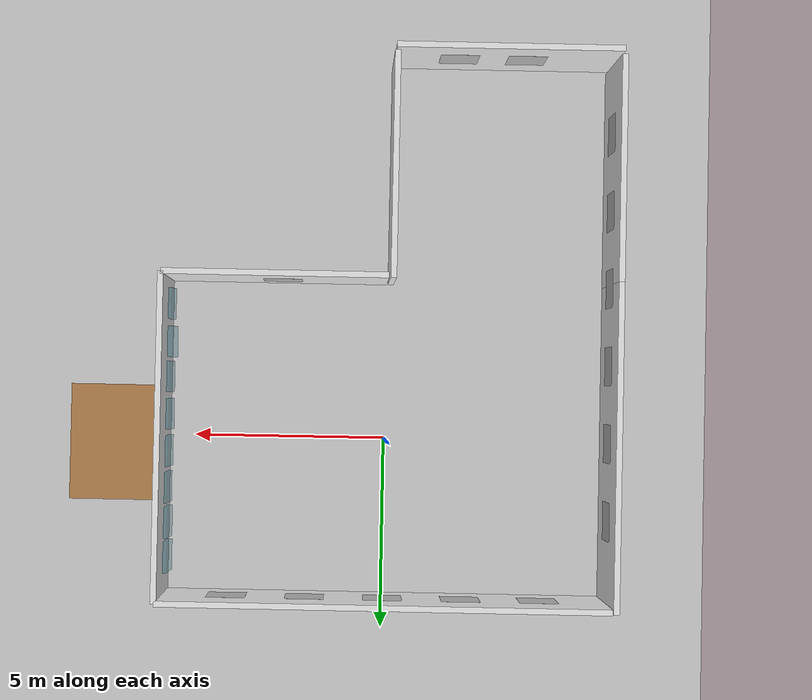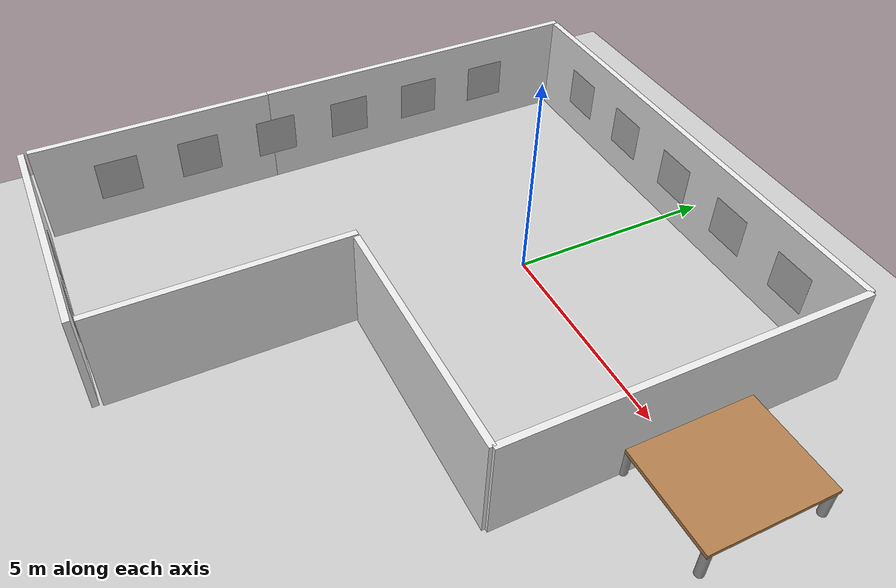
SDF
<sdf version="1.6">
 <world name="default">
  <light name="sun" type="directional">
   <pose>0 0 10 0 -0 0</pose>
   <diffuse>0.8 0.8 0.8 1</diffuse>
   <specular>0.2 0.2 0.2 1</specular>
   <attenuation>
    <range>1000</range>
    <constant>0.9</constant>
    <linear>0.01</linear>
    <quadratic>0.001</quadratic>
   </attenuation>
   <direction>-0.5 0.5 -1</direction>
  </light>
  <gravity>0 0 -9.8</gravity>
  <magnetic_field>6e-06 2.3e-05 -4.2e-05</magnetic_field>
  <atmosphere type="adiabatic"/>
  <physics name="default_physics" default="0" type="ode">
   <max_step_size>0.01</max_step_size>
   <real_time_factor>1</real_time_factor>
   <real_time_update_rate>100</real_time_update_rate>
   <ode>
    <solver>
     <type>quick</type>
     <iters>100</iters>
     <precon_iters>0</precon_iters>
     <sor>1</sor>
     <use_dynamic_moi_rescaling>0</use_dynamic_moi_rescaling>
    </solver>
    <constraints>
     <cfm>0</cfm>
     <erp>0.5</erp>
     <contact_max_correcting_vel>1000</contact_max_correcting_vel>
     <contact_surface_layer>0</contact_surface_layer>
    </constraints>
   </ode>
  </physics>
  <scene><ambient>0.4 0.4 0.4 1</ambient><background>0.7 0.7 0.7 1</background><shadows>0</shadows></scene>
  <spherical_coordinates>
   <surface_model>EARTH_WGS84</surface_model>
   <latitude_deg>0</latitude_deg>
   <longitude_deg>0</longitude_deg>
   <elevation>0</elevation>
   <heading_deg>0</heading_deg>
  </spherical_coordinates>
  <model name="office_env_w2">
   <pose>0 4.162 1.25 0 -0 0</pose>
   <link name="Wall_10">
    <visual name="Wall_10_Visual_0">
     <geometry><box><size>11.466 0.15 2.5</size></box></geometry>
     <material>
      <script>
       <uri>model://office_env_w/materials/scripts</uri>
       <uri>model://office_env_w/materials/textures</uri>
       <name>wall_white</name>
      </script>
     </material>
     <meta><layer>0</layer></meta>
    </visual>
    <collision name="Wall_10_Collision_0"><geometry><box><size>11.466 0.15 2.5</size></box></geometry></collision>
   </link>
   <static>1</static>
  </model>
  <model name="office_env_w">
   <pose>5.733 0 1.25 0 -0 1.57</pose>
   <link name="Wall_10">
    <visual name="Wall_10_Visual_0">
     <geometry><box><size>8.324 0.15 2.5</size></box></geometry>
     <material>
      <script>
       <uri>model://office_env_w/materials/scripts</uri>
       <uri>model://office_env_w/materials/textures</uri>
       <name>wall_white</name>
      </script>
     </material>
     <meta><layer>0</layer></meta>
    </visual>
    <collision name="Wall_10_Collision_0"><geometry><box><size>8.324 0.15 2.5</size></box></geometry></collision>
   </link>
   <static>1</static>
  </model>
  <model name="office_env_w3">
   <pose>2.8655 -4.162 1.25 0 -0 0</pose>
   <link name="Wall_10">
    <visual name="Wall_10_Visual_0">
     <geometry><box><size>5.733 0.15 2.5</size></box></geometry>
     <material>
      <script>
       <uri>model://office_env_w/materials/scripts</uri>
       <uri>model://office_env_w/materials/textures</uri>
       <name>wall_white</name>
      </script>
     </material>
     <meta><layer>0</layer></meta>
    </visual>
    <collision name="Wall_10_Collision_0"><geometry><box><size>5.733 0.15 2.5</size></box></geometry></collision>
   </link>
   <static>1</static>
  </model>
  <model name="office_env_w3_clone">
   <pose>-0.116895 -6.96099 1.25 0 -0 1.57</pose>
   <link name="Wall_10">
    <visual name="Wall_10_Visual_0">
     <geometry><box><size>5.733 0.15 2.5</size></box></geometry>
     <material>
      <script>
       <uri>model://office_env_w/materials/scripts</uri>
       <uri>model://office_env_w/materials/textures</uri>
       <name>wall_white</name>
      </script>
     </material>
     <meta><layer>0</layer></meta>
    </visual>
    <collision name="Wall_10_Collision_0"><geometry><box><size>5.733 0.15 2.5</size></box></geometry></collision>
   </link>
   <static>1</static>
  </model>
  <model name="office_env_w_clone">
   <pose>-5.82312 0.056431 1.25 0 -0 1.57</pose>
   <link name="Wall_10">
    <visual name="Wall_10_Visual_0">
     <geometry><box><size>8.324 0.15 2.5</size></box></geometry>
     <material>
      <script>
       <uri>model://office_env_w/materials/scripts</uri>
       <uri>model://office_env_w/materials/textures</uri>
       <name>wall_white</name>
      </script>
     </material>
     <meta><layer>0</layer></meta>
    </visual>
    <collision name="Wall_10_Collision_0"><geometry><box><size>8.324 0.15 2.5</size></box></geometry></collision>
   </link>
   <static>1</static>
  </model>
  <model name="office_env_w3_clone_clone">
   <pose>-5.82704 -6.96526 1.25 0 -0 1.57</pose>
   <link name="Wall_10">
    <visual name="Wall_10_Visual_0">
     <geometry><box><size>5.733 0.15 2.5</size></box></geometry>
     <material>
      <script>
       <uri>model://office_env_w/materials/scripts</uri>
       <uri>model://office_env_w/materials/textures</uri>
       <name>wall_white</name>
      </script>
     </material>
     <meta><layer>0</layer></meta>
    </visual>
    <collision name="Wall_10_Collision_0"><geometry><box><size>5.733 0.15 2.5</size></box></geometry></collision>
   </link>
   <static>1</static>
  </model>
  <model name="office_env_w3_clone_0">
   <pose>-2.96341 -9.9742 1.25 0 -0 0</pose>
   <link name="Wall_10">
    <visual name="Wall_10_Visual_0">
     <geometry><box><size>5.733 0.15 2.5</size></box></geometry>
     <material>
      <script>
       <uri>model://office_env_w/materials/scripts</uri>
       <uri>model://office_env_w/materials/textures</uri>
       <name>wall_white</name>
      </script>
     </material>
     <meta><layer>0</layer></meta>
    </visual>
    <collision name="Wall_10_Collision_0"><geometry><box><size>5.733 0.15 2.5</size></box></geometry></collision>
   </link>
   <static>1</static>
  </model>
  <model name="window_3">
   <link name="link_2">
    <visual name="visual">
     <pose>0 0 0.9 0 -0 0</pose>
     <geometry><box><size>0.8 0.15 0.8</size></box></geometry>
     <material>
      <lighting>1</lighting>
      <ambient>0.1 0.5 0.6 1</ambient>
      <diffuse>0.1 0.5 0.6 1</diffuse>
      <specular>0.01 0.01 0.01 1</specular>
      <emissive>0 0 0 1</emissive>
     </material>
     <transparency>0.7</transparency>
    </visual>
    <collision name="collision">
     <pose>0 0 0.9 0 -0 0</pose>
     <geometry><box><size>0.8 0.15 0.8</size></box></geometry>
    </collision>
   </link>
   <static>1</static>
   <pose>5.55041 3.13004 -0.000428 0.072676 0.011663 1.57159</pose>
  </model>
  <model name="window_3_clone_clone">
   <link name="link_2">
    <visual name="visual">
     <pose>0 0 0.9 0 -0 0</pose>
     <geometry><box><size>0.8 0.15 0.8</size></box></geometry>
     <material>
      <lighting>1</lighting>
      <ambient>0.1 0.5 0.6 1</ambient>
      <diffuse>0.1 0.5 0.6 1</diffuse>
      <specular>0.01 0.01 0.01 1</specular>
      <emissive>0 0 0 1</emissive>
     </material>
     <transparency>0.7</transparency>
    </visual>
    <collision name="collision">
     <pose>0 0 0.9 0 -0 0</pose>
     <geometry><box><size>0.8 0.15 0.8</size></box></geometry>
    </collision>
   </link>
   <static>1</static>
   <pose>5.57835 0.394375 -0.000428 0.072676 0.011663 1.57159</pose>
  </model>
  <model name="window_3_clone_clone_0">
   <link name="link_2">
    <visual name="visual">
     <pose>0 0 0.9 0 -0 0</pose>
     <geometry><box><size>0.8 0.15 0.8</size></box></geometry>
     <material>
      <lighting>1</lighting>
      <ambient>0.1 0.5 0.6 1</ambient>
      <diffuse>0.1 0.5 0.6 1</diffuse>
      <specular>0.01 0.01 0.01 1</specular>
      <emissive>0 0 0 1</emissive>
     </material>
     <transparency>0.7</transparency>
    </visual>
    <collision name="collision">
     <pose>0 0 0.9 0 -0 0</pose>
     <geometry><box><size>0.8 0.15 0.8</size></box></geometry>
    </collision>
   </link>
   <static>1</static>
   <pose>5.57507 -1.53947 -0.000428 0.072676 0.011663 1.57159</pose>
  </model>
  <model name="window_3_clone_clone_1">
   <link name="link_2">
    <visual name="visual">
     <pose>0 0 0.9 0 -0 0</pose>
     <geometry><box><size>0.8 0.15 0.8</size></box></geometry>
     <material>
      <lighting>1</lighting>
      <ambient>0.1 0.5 0.6 1</ambient>
      <diffuse>0.1 0.5 0.6 1</diffuse>
      <specular>0.01 0.01 0.01 1</specular>
      <emissive>0 0 0 1</emissive>
     </material>
     <transparency>0.7</transparency>
    </visual>
    <collision name="collision">
     <pose>0 0 0.9 0 -0 0</pose>
     <geometry><box><size>0.8 0.15 0.8</size></box></geometry>
    </collision>
   </link>
   <static>1</static>
   <pose>5.57316 -3.44378 -0.000428 0.072676 0.011663 1.57159</pose>
  </model>
  <model name="window_3_clone_clone_2">
   <link name="link_2">
    <visual name="visual">
     <pose>0 0 0.9 0 -0 0</pose>
     <geometry><box><size>0.8 0.15 0.8</size></box></geometry>
     <material>
      <lighting>1</lighting>
      <ambient>0.1 0.5 0.6 1</ambient>
      <diffuse>0.1 0.5 0.6 1</diffuse>
      <specular>0.01 0.01 0.01 1</specular>
      <emissive>0 0 0 1</emissive>
     </material>
     <transparency>0.7</transparency>
    </visual>
    <collision name="collision">
     <pose>0 0 0.9 0 -0 0</pose>
     <geometry><box><size>0.8 0.15 0.8</size></box></geometry>
    </collision>
   </link>
   <static>1</static>
   <pose>5.51026 -2.44936 -0.000428 0.072676 0.011663 1.57159</pose>
  </model>
  <model name="window_3_clone_clone_3">
   <link name="link_2">
    <visual name="visual">
     <pose>0 0 0.9 0 -0 0</pose>
     <geometry><box><size>0.8 0.15 0.8</size></box></geometry>
     <material>
      <lighting>1</lighting>
      <ambient>0.1 0.5 0.6 1</ambient>
      <diffuse>0.1 0.5 0.6 1</diffuse>
      <specular>0.01 0.01 0.01 1</specular>
      <emissive>0 0 0 1</emissive>
     </material>
     <transparency>0.7</transparency>
    </visual>
    <collision name="collision">
     <pose>0 0 0.9 0 -0 0</pose>
     <geometry><box><size>0.8 0.15 0.8</size></box></geometry>
    </collision>
   </link>
   <static>1</static>
   <pose>5.56777 -0.565762 -0.000428 0.072676 0.011663 1.57159</pose>
  </model>
  <model name="window_3_clone_clone_4">
   <link name="link_2">
    <visual name="visual">
     <pose>0 0 0.9 0 -0 0</pose>
     <geometry><box><size>0.8 0.15 0.8</size></box></geometry>
     <material>
      <lighting>1</lighting>
      <ambient>0.1 0.5 0.6 1</ambient>
      <diffuse>0.1 0.5 0.6 1</diffuse>
      <specular>0.01 0.01 0.01 1</specular>
      <emissive>0 0 0 1</emissive>
     </material>
     <transparency>0.7</transparency>
    </visual>
    <collision name="collision">
     <pose>0 0 0.9 0 -0 0</pose>
     <geometry><box><size>0.8 0.15 0.8</size></box></geometry>
    </collision>
   </link>
   <static>1</static>
   <pose>5.59135 1.3384 -0.000428 0.072676 0.011663 1.57159</pose>
  </model>
  <model name="window_3_clone_clone_5">
   <link name="link_2">
    <visual name="visual">
     <pose>0 0 0.9 0 -0 0</pose>
     <geometry><box><size>0.8 0.15 0.8</size></box></geometry>
     <material>
      <lighting>1</lighting>
      <ambient>0.1 0.5 0.6 1</ambient>
      <diffuse>0.1 0.5 0.6 1</diffuse>
      <specular>0.01 0.01 0.01 1</specular>
      <emissive>0 0 0 1</emissive>
     </material>
     <transparency>0.7</transparency>
    </visual>
    <collision name="collision">
     <pose>0 0 0.9 0 -0 0</pose>
     <geometry><box><size>0.8 0.15 0.8</size></box></geometry>
    </collision>
   </link>
   <static>1</static>
   <pose>5.56149 2.2418 -0.000428 0.072676 0.011663 1.57159</pose>
  </model>
  <model name="neobotix_wall_stickers">
   <static>1</static>
   <link name="link">
    <collision name="collision">
     <geometry><plane><normal>0 0 1</normal><size>1 1</size></plane></geometry>
     <surface><friction><ode><mu>100</mu><mu2>50</mu2></ode></friction></surface>
    </collision>
    <visual name="visual">
     <cast_shadows>0</cast_shadows>
     <geometry><plane><normal>0 0 1</normal><size>1 1</size></plane></geometry>
     <material>
      <script>
       <uri>model://neobotix_wall_stickers/materials/scripts</uri>
       <uri>model://neobotix_wall_stickers/materials/textures/</uri>
       <name>NeobotixGroundPlane/Image</name>
      </script>
     </material>
    </visual>
   </link>
   <pose>0 4.07 1.25 1.57 -0 0</pose>
  </model>
  <model name="neobotix_wall_stickers_0">
   <static>1</static>
   <link name="link">
    <collision name="collision">
     <geometry><plane><normal>0 0 1</normal><size>1 1</size></plane></geometry>
     <surface><friction><ode><mu>100</mu><mu2>50</mu2></ode></friction></surface>
    </collision>
    <visual name="visual">
     <cast_shadows>0</cast_shadows>
     <geometry><plane><normal>0 0 1</normal><size>1 1</size></plane></geometry>
     <material>
      <script>
       <uri>model://neobotix_wall_stickers/materials/scripts</uri>
       <uri>model://neobotix_wall_stickers/materials/textures/</uri>
       <name>NeobotixGroundPlane/Image</name>
      </script>
     </material>
    </visual>
   </link>
   <pose>-2 4.07 1.25 1.57 -0 0</pose>
  </model>
  <model name="neobotix_wall_stickers_1">
   <static>1</static>
   <link name="link">
    <collision name="collision">
     <geometry><plane><normal>0 0 1</normal><size>1 1</size></plane></geometry>
     <surface><friction><ode><mu>100</mu><mu2>50</mu2></ode></friction></surface>
    </collision>
    <visual name="visual">
     <cast_shadows>0</cast_shadows>
     <geometry><plane><normal>0 0 1</normal><size>1 1</size></plane></geometry>
     <material>
      <script>
       <uri>model://neobotix_wall_stickers/materials/scripts</uri>
       <uri>model://neobotix_wall_stickers/materials/textures/</uri>
       <name>NeobotixGroundPlane/Image</name>
      </script>
     </material>
    </visual>
   </link>
   <pose>-4 4.07 1.25 1.57 -0 0</pose>
  </model>
  <model name="neobotix_wall_stickers_2">
   <static>1</static>
   <link name="link">
    <collision name="collision">
     <geometry><plane><normal>0 0 1</normal><size>1 1</size></plane></geometry>
     <surface><friction><ode><mu>100</mu><mu2>50</mu2></ode></friction></surface>
    </collision>
    <visual name="visual">
     <cast_shadows>0</cast_shadows>
     <geometry><plane><normal>0 0 1</normal><size>1 1</size></plane></geometry>
     <material>
      <script>
       <uri>model://neobotix_wall_stickers/materials/scripts</uri>
       <uri>model://neobotix_wall_stickers/materials/textures/</uri>
       <name>NeobotixGroundPlane/Image</name>
      </script>
     </material>
    </visual>
   </link>
   <pose>2 4.07 1.25 1.57 -0 0</pose>
  </model>
  <model name="neobotix_wall_stickers_3">
   <static>1</static>
   <link name="link">
    <collision name="collision">
     <geometry><plane><normal>0 0 1</normal><size>1 1</size></plane></geometry>
     <surface><friction><ode><mu>100</mu><mu2>50</mu2></ode></friction></surface>
    </collision>
    <visual name="visual">
     <cast_shadows>0</cast_shadows>
     <geometry><plane><normal>0 0 1</normal><size>1 1</size></plane></geometry>
     <material>
      <script>
       <uri>model://neobotix_wall_stickers/materials/scripts</uri>
       <uri>model://neobotix_wall_stickers/materials/textures/</uri>
       <name>NeobotixGroundPlane/Image</name>
      </script>
     </material>
    </visual>
   </link>
   <pose>4 4.07 1.25 1.57 -0 0</pose>
  </model>
  <model name="neobotix_wall_stickers_4">
   <static>1</static>
   <link name="link">
    <collision name="collision">
     <geometry><plane><normal>0 0 1</normal><size>1 1</size></plane></geometry>
     <surface><friction><ode><mu>100</mu><mu2>50</mu2></ode></friction></surface>
    </collision>
    <visual name="visual">
     <cast_shadows>0</cast_shadows>
     <geometry><plane><normal>0 0 1</normal><size>1 1</size></plane></geometry>
     <material>
      <script>
       <uri>model://neobotix_wall_stickers/materials/scripts</uri>
       <uri>model://neobotix_wall_stickers/materials/textures/</uri>
       <name>NeobotixGroundPlane/Image</name>
      </script>
     </material>
    </visual>
   </link>
   <pose>2.7 -4.07 1.25 1.57159 0.001593 3.14159</pose>
  </model>
  <model name="neobotix_wall_stickers_5">
   <static>1</static>
   <link name="link">
    <collision name="collision">
     <geometry><plane><normal>0 0 1</normal><size>1 1</size></plane></geometry>
     <surface><friction><ode><mu>100</mu><mu2>50</mu2></ode></friction></surface>
    </collision>
    <visual name="visual">
     <cast_shadows>0</cast_shadows>
     <geometry><plane><normal>0 0 1</normal><size>1 1</size></plane></geometry>
     <material>
      <script>
       <uri>model://neobotix_wall_stickers/materials/scripts</uri>
       <uri>model://neobotix_wall_stickers/materials/textures/</uri>
       <name>NeobotixGroundPlane/Image</name>
      </script>
     </material>
    </visual>
   </link>
   <pose>-5.732 0 1.25 1.57 -0 1.57</pose>
  </model>
  <model name="neobotix_wall_stickers_6">
   <static>1</static>
   <link name="link">
    <collision name="collision">
     <geometry><plane><normal>0 0 1</normal><size>1 1</size></plane></geometry>
     <surface><friction><ode><mu>100</mu><mu2>50</mu2></ode></friction></surface>
    </collision>
    <visual name="visual">
     <cast_shadows>0</cast_shadows>
     <geometry><plane><normal>0 0 1</normal><size>1 1</size></plane></geometry>
     <material>
      <script>
       <uri>model://neobotix_wall_stickers/materials/scripts</uri>
       <uri>model://neobotix_wall_stickers/materials/textures/</uri>
       <name>NeobotixGroundPlane/Image</name>
      </script>
     </material>
    </visual>
   </link>
   <pose>-5.732 -2 1.25 1.57 -0 1.57</pose>
  </model>
  <model name="neobotix_wall_stickers_7">
   <static>1</static>
   <link name="link">
    <collision name="collision">
     <geometry><plane><normal>0 0 1</normal><size>1 1</size></plane></geometry>
     <surface><friction><ode><mu>100</mu><mu2>50</mu2></ode></friction></surface>
    </collision>
    <visual name="visual">
     <cast_shadows>0</cast_shadows>
     <geometry><plane><normal>0 0 1</normal><size>1 1</size></plane></geometry>
     <material>
      <script>
       <uri>model://neobotix_wall_stickers/materials/scripts</uri>
       <uri>model://neobotix_wall_stickers/materials/textures/</uri>
       <name>NeobotixGroundPlane/Image</name>
      </script>
     </material>
    </visual>
   </link>
   <pose>-5.732 2 1.25 1.57 -0 1.57</pose>
  </model>
  <model name="neobotix_wall_stickers_8">
   <static>1</static>
   <link name="link">
    <collision name="collision">
     <geometry><plane><normal>0 0 1</normal><size>1 1</size></plane></geometry>
     <surface><friction><ode><mu>100</mu><mu2>50</mu2></ode></friction></surface>
    </collision>
    <visual name="visual">
     <cast_shadows>0</cast_shadows>
     <geometry><plane><normal>0 0 1</normal><size>1 1</size></plane></geometry>
     <material>
      <script>
       <uri>model://neobotix_wall_stickers/materials/scripts</uri>
       <uri>model://neobotix_wall_stickers/materials/textures/</uri>
       <name>NeobotixGroundPlane/Image</name>
      </script>
     </material>
    </visual>
   </link>
   <pose>-5.732 -4 1.25 1.57 -0 1.57</pose>
  </model>
  <model name="neobotix_wall_stickers_9">
   <static>1</static>
   <link name="link">
    <collision name="collision">
     <geometry><plane><normal>0 0 1</normal><size>1 1</size></plane></geometry>
     <surface><friction><ode><mu>100</mu><mu2>50</mu2></ode></friction></surface>
    </collision>
    <visual name="visual">
     <cast_shadows>0</cast_shadows>
     <geometry><plane><normal>0 0 1</normal><size>1 1</size></plane></geometry>
     <material>
      <script>
       <uri>model://neobotix_wall_stickers/materials/scripts</uri>
       <uri>model://neobotix_wall_stickers/materials/textures/</uri>
       <name>NeobotixGroundPlane/Image</name>
      </script>
     </material>
    </visual>
   </link>
   <pose>-5.732 -6 1.25 1.57 -0 1.57</pose>
  </model>
  <model name="neobotix_wall_stickers_10">
   <static>1</static>
   <link name="link">
    <collision name="collision">
     <geometry><plane><normal>0 0 1</normal><size>1 1</size></plane></geometry>
     <surface><friction><ode><mu>100</mu><mu2>50</mu2></ode></friction></surface>
    </collision>
    <visual name="visual">
     <cast_shadows>0</cast_shadows>
     <geometry><plane><normal>0 0 1</normal><size>1 1</size></plane></geometry>
     <material>
      <script>
       <uri>model://neobotix_wall_stickers/materials/scripts</uri>
       <uri>model://neobotix_wall_stickers/materials/textures/</uri>
       <name>NeobotixGroundPlane/Image</name>
      </script>
     </material>
    </visual>
   </link>
   <pose>-5.732 -8 1.25 1.57 -0 1.57</pose>
  </model>
  <model name="neobotix_wall_stickers_11">
   <static>1</static>
   <link name="link">
    <collision name="collision">
     <geometry><plane><normal>0 0 1</normal><size>1 1</size></plane></geometry>
     <surface><friction><ode><mu>100</mu><mu2>50</mu2></ode></friction></surface>
    </collision>
    <visual name="visual">
     <cast_shadows>0</cast_shadows>
     <geometry><plane><normal>0 0 1</normal><size>1 1</size></plane></geometry>
     <material>
      <script>
       <uri>model://neobotix_wall_stickers/materials/scripts</uri>
       <uri>model://neobotix_wall_stickers/materials/textures/</uri>
       <name>NeobotixGroundPlane/Image</name>
      </script>
     </material>
    </visual>
   </link>
   <pose>-0.2 -8 1.25 1.57159 0.001593 -1.57159</pose>
  </model>
  <model name="neobotix_wall_stickers_12">
   <static>1</static>
   <link name="link">
    <collision name="collision">
     <geometry><plane><normal>0 0 1</normal><size>1 1</size></plane></geometry>
     <surface><friction><ode><mu>100</mu><mu2>50</mu2></ode></friction></surface>
    </collision>
    <visual name="visual">
     <cast_shadows>0</cast_shadows>
     <geometry><plane><normal>0 0 1</normal><size>1 1</size></plane></geometry>
     <material>
      <script>
       <uri>model://neobotix_wall_stickers/materials/scripts</uri>
       <uri>model://neobotix_wall_stickers/materials/textures/</uri>
       <name>NeobotixGroundPlane/Image</name>
      </script>
     </material>
    </visual>
   </link>
   <pose>-0.2 -6 1.25 1.57159 0.001593 -1.57159</pose>
  </model>
  <model name="neobotix_wall_stickers_13">
   <static>1</static>
   <link name="link">
    <collision name="collision">
     <geometry><plane><normal>0 0 1</normal><size>1 1</size></plane></geometry>
     <surface><friction><ode><mu>100</mu><mu2>50</mu2></ode></friction></surface>
    </collision>
    <visual name="visual">
     <cast_shadows>0</cast_shadows>
     <geometry><plane><normal>0 0 1</normal><size>1 1</size></plane></geometry>
     <material>
      <script>
       <uri>model://neobotix_wall_stickers/materials/scripts</uri>
       <uri>model://neobotix_wall_stickers/materials/textures/</uri>
       <name>NeobotixGroundPlane/Image</name>
      </script>
     </material>
    </visual>
   </link>
   <pose>-1.7445 -9.89 1.25 1.57159 0.001593 3.14159</pose>
  </model>
  <model name="neobotix_wall_stickers_14">
   <static>1</static>
   <link name="link">
    <collision name="collision">
     <geometry><plane><normal>0 0 1</normal><size>1 1</size></plane></geometry>
     <surface><friction><ode><mu>100</mu><mu2>50</mu2></ode></friction></surface>
    </collision>
    <visual name="visual">
     <cast_shadows>0</cast_shadows>
     <geometry><plane><normal>0 0 1</normal><size>1 1</size></plane></geometry>
     <material>
      <script>
       <uri>model://neobotix_wall_stickers/materials/scripts</uri>
       <uri>model://neobotix_wall_stickers/materials/textures/</uri>
       <name>NeobotixGroundPlane/Image</name>
      </script>
     </material>
    </visual>
   </link>
   <pose>-3.489 -9.89 1.25 1.57 -0 -3.14</pose>
  </model>
  <light name="user_point_light_0" type="point">
   <pose>3.54976 1.43038 1 0 -0 0</pose>
   <diffuse>0.5 0.5 0.5 1</diffuse>
   <specular>0.1 0.1 0.1 1</specular>
   <attenuation>
    <range>20</range>
    <constant>0.5</constant>
    <linear>0.01</linear>
    <quadratic>0.001</quadratic>
   </attenuation>
   <cast_shadows>0</cast_shadows>
   <direction>0 0 -1</direction>
  </light>
  <light name="user_point_light_0_clone" type="point">
   <pose>-8.02842 6.22549 7.18798 0 -0 0</pose>
   <diffuse>0.5 0.5 0.5 1</diffuse>
   <specular>0.1 0.1 0.1 1</specular>
   <direction>0 0 -1</direction>
   <attenuation>
    <range>20</range>
    <constant>0.5</constant>
    <linear>0.01</linear>
    <quadratic>0.001</quadratic>
   </attenuation>
   <cast_shadows>0</cast_shadows>
  </light>
  <audio><device>default</device></audio>
  <model name="neobotix_ground_plane">
   <static>1</static>
   <link name="link">
    <collision name="collision">
     <geometry><plane><normal>0 0 1</normal><size>100 100</size></plane></geometry>
     <surface><friction><ode><mu>100</mu><mu2>50</mu2></ode></friction></surface>
    </collision>
    <visual name="visual">
     <cast_shadows>0</cast_shadows>
     <geometry><plane><normal>0 0 1</normal><size>100 100</size></plane></geometry>
     <material>
      <script>
       <uri>model://neobotix_ground_plane/materials/scripts</uri>
       <uri>model://neobotix_ground_plane/materials/textures/</uri>
       <name>NeobotixGroundPlane/Image</name>
      </script>
     </material>
    </visual>
   </link>
   <pose>15.6163 -0.783534 0 0 -0 0</pose>
  </model>
  <model name="table">
   <link name="link">
    <pose>0 0 0 0 -0 1.57</pose>
    <inertial>
     <inertia><ixx>1</ixx><ixy>0</ixy><ixz>0</ixz><iyy>1</iyy><iyz>0</iyz><izz>1</izz></inertia>
     <mass>1</mass>
    </inertial>
    <visual name="visual1">
     <pose>0 0 0.75 0 -0 0</pose>
     <geometry><box><size>3 2.5 0.1</size></box></geometry>
     <material>
      <script><uri>file://media/materials/scripts/gazebo.material</uri><name>Gazebo/Wood</name></script>
      <ambient>1 1 1 1</ambient>
      <diffuse>1 1 1 1</diffuse>
      <specular>0.2 0.2 0.2 1</specular>
      <emissive>0 0 0 1</emissive>
      <shader type="vertex"><normal_map>__default__</normal_map></shader>
     </material>
    </visual>
    <visual name="front_left_leg">
     <pose>1.4 1.15 0.35 0 -0 0</pose>
     <geometry><cylinder><radius>0.1</radius><length>0.7</length></cylinder></geometry>
     <material>
      <script><uri>file://media/materials/scripts/gazebo.material</uri><name>Gazebo/Grey</name></script>
      <ambient>0.3 0.3 0.3 1</ambient>
      <diffuse>0.7 0.7 0.7 1</diffuse>
      <specular>0.01 0.01 0.01 1</specular>
      <emissive>0 0 0 1</emissive>
      <shader type="vertex"><normal_map>__default__</normal_map></shader>
     </material>
    </visual>
    <visual name="back_right_leg">
     <pose>-1.4 -1.15 0.35 0 -0 0</pose>
     <geometry><cylinder><radius>0.1</radius><length>0.7</length></cylinder></geometry>
     <material>
      <script><uri>file://media/materials/scripts/gazebo.material</uri><name>Gazebo/Grey</name></script>
      <ambient>0.3 0.3 0.3 1</ambient>
      <diffuse>0.7 0.7 0.7 1</diffuse>
      <specular>0.01 0.01 0.01 1</specular>
      <emissive>0 0 0 1</emissive>
      <shader type="vertex"><normal_map>__default__</normal_map></shader>
     </material>
    </visual>
    <visual name="front_right_leg">
     <pose>1.4 -1.15 0.35 0 -0 0</pose>
     <geometry><cylinder><radius>0.1</radius><length>0.7</length></cylinder></geometry>
     <material>
      <script><uri>file://media/materials/scripts/gazebo.material</uri><name>Gazebo/Grey</name></script>
      <ambient>0.3 0.3 0.3 1</ambient>
      <diffuse>0.7 0.7 0.7 1</diffuse>
      <specular>0.01 0.01 0.01 1</specular>
      <emissive>0 0 0 1</emissive>
      <shader type="vertex"><normal_map>__default__</normal_map></shader>
     </material>
    </visual>
    <visual name="back_left_leg">
     <pose>-1.4 1.15 0.35 0 -0 0</pose>
     <geometry><cylinder><radius>0.1</radius><length>0.7</length></cylinder></geometry>
     <material>
      <script><uri>file://media/materials/scripts/gazebo.material</uri><name>Gazebo/Grey</name></script>
      <ambient>0.3 0.3 0.3 1</ambient>
      <diffuse>0.7 0.7 0.7 1</diffuse>
      <specular>0.01 0.01 0.01 1</specular>
      <emissive>0 0 0 1</emissive>
      <shader type="vertex"><normal_map>__default__</normal_map></shader>
     </material>
    </visual>
    <collision name="surface">
     <pose>0 0 0.75 0 -0 0</pose>
     <geometry><box><size>3 2.5 0.1</size></box></geometry>
     <surface>
      <friction>
       <ode><mu>0.6</mu><mu2>0.6</mu2><fdir1>0 0 0</fdir1><slip1>0</slip1><slip2>0</slip2></ode>
       <torsional>
        <coefficient>1</coefficient>
        <patch_radius>0</patch_radius>
        <surface_radius>0</surface_radius>
        <use_patch_radius>1</use_patch_radius>
        <ode><slip>0</slip></ode>
       </torsional>
      </friction>
      <bounce><restitution_coefficient>0</restitution_coefficient><threshold>1e+06</threshold></bounce>
      <contact>
       <collide_without_contact>0</collide_without_contact>
       <collide_without_contact_bitmask>1</collide_without_contact_bitmask>
       <collide_bitmask>1</collide_bitmask>
       <ode>
        <soft_cfm>0</soft_cfm>
        <soft_erp>0.2</soft_erp>
        <kp>1e+13</kp>
        <kd>1</kd>
        <max_vel>0.01</max_vel>
        <min_depth>0</min_depth>
       </ode>
       <bullet>
        <split_impulse>1</split_impulse>
        <split_impulse_penetration_threshold>-0.01</split_impulse_penetration_threshold>
        <soft_cfm>0</soft_cfm>
        <soft_erp>0.2</soft_erp>
        <kp>1e+13</kp>
        <kd>1</kd>
       </bullet>
      </contact>
     </surface>
    </collision>
    <collision name="front_left_leg">
     <pose>1.4 1.15 0.35 0 -0 0</pose>
     <geometry><cylinder><radius>0.1</radius><length>0.7</length></cylinder></geometry>
     <surface>
      <friction>
       <ode><mu>1</mu><mu2>1</mu2><fdir1>0 0 0</fdir1><slip1>0</slip1><slip2>0</slip2></ode>
       <torsional>
        <coefficient>1</coefficient>
        <patch_radius>0</patch_radius>
        <surface_radius>0</surface_radius>
        <use_patch_radius>1</use_patch_radius>
        <ode><slip>0</slip></ode>
       </torsional>
      </friction>
      <bounce><restitution_coefficient>0</restitution_coefficient><threshold>1e+06</threshold></bounce>
      <contact>
       <collide_without_contact>0</collide_without_contact>
       <collide_without_contact_bitmask>1</collide_without_contact_bitmask>
       <collide_bitmask>1</collide_bitmask>
       <ode>
        <soft_cfm>0</soft_cfm>
        <soft_erp>0.2</soft_erp>
        <kp>1e+13</kp>
        <kd>1</kd>
        <max_vel>0.01</max_vel>
        <min_depth>0</min_depth>
       </ode>
       <bullet>
        <split_impulse>1</split_impulse>
        <split_impulse_penetration_threshold>-0.01</split_impulse_penetration_threshold>
        <soft_cfm>0</soft_cfm>
        <soft_erp>0.2</soft_erp>
        <kp>1e+13</kp>
        <kd>1</kd>
       </bullet>
      </contact>
     </surface>
    </collision>
    <collision name="back_right_leg">
     <pose>-1.4 -1.15 0.35 0 -0 0</pose>
     <geometry><cylinder><radius>0.1</radius><length>0.7</length></cylinder></geometry>
     <surface>
      <friction>
       <ode><mu>1</mu><mu2>1</mu2><fdir1>0 0 0</fdir1><slip1>0</slip1><slip2>0</slip2></ode>
       <torsional>
        <coefficient>1</coefficient>
        <patch_radius>0</patch_radius>
        <surface_radius>0</surface_radius>
        <use_patch_radius>1</use_patch_radius>
        <ode><slip>0</slip></ode>
       </torsional>
      </friction>
      <bounce><restitution_coefficient>0</restitution_coefficient><threshold>1e+06</threshold></bounce>
      <contact>
       <collide_without_contact>0</collide_without_contact>
       <collide_without_contact_bitmask>1</collide_without_contact_bitmask>
       <collide_bitmask>1</collide_bitmask>
       <ode>
        <soft_cfm>0</soft_cfm>
        <soft_erp>0.2</soft_erp>
        <kp>1e+13</kp>
        <kd>1</kd>
        <max_vel>0.01</max_vel>
        <min_depth>0</min_depth>
       </ode>
       <bullet>
        <split_impulse>1</split_impulse>
        <split_impulse_penetration_threshold>-0.01</split_impulse_penetration_threshold>
        <soft_cfm>0</soft_cfm>
        <soft_erp>0.2</soft_erp>
        <kp>1e+13</kp>
        <kd>1</kd>
       </bullet>
      </contact>
     </surface>
    </collision>
    <collision name="front_right_leg">
     <pose>1.4 -1.15 0.35 0 -0 0</pose>
     <geometry><cylinder><radius>0.1</radius><length>0.7</length></cylinder></geometry>
     <surface>
      <friction>
       <ode><mu>1</mu><mu2>1</mu2><fdir1>0 0 0</fdir1><slip1>0</slip1><slip2>0</slip2></ode>
       <torsional>
        <coefficient>1</coefficient>
        <patch_radius>0</patch_radius>
        <surface_radius>0</surface_radius>
        <use_patch_radius>1</use_patch_radius>
        <ode><slip>0</slip></ode>
       </torsional>
      </friction>
      <bounce><restitution_coefficient>0</restitution_coefficient><threshold>1e+06</threshold></bounce>
      <contact>
       <collide_without_contact>0</collide_without_contact>
       <collide_without_contact_bitmask>1</collide_without_contact_bitmask>
       <collide_bitmask>1</collide_bitmask>
       <ode>
        <soft_cfm>0</soft_cfm>
        <soft_erp>0.2</soft_erp>
        <kp>1e+13</kp>
        <kd>1</kd>
        <max_vel>0.01</max_vel>
        <min_depth>0</min_depth>
       </ode>
       <bullet>
        <split_impulse>1</split_impulse>
        <split_impulse_penetration_threshold>-0.01</split_impulse_penetration_threshold>
        <soft_cfm>0</soft_cfm>
        <soft_erp>0.2</soft_erp>
        <kp>1e+13</kp>
        <kd>1</kd>
       </bullet>
      </contact>
     </surface>
    </collision>
    <collision name="back_left_leg">
     <pose>-1.4 1.15 0.35 0 -0 0</pose>
     <geometry><cylinder><radius>0.1</radius><length>0.7</length></cylinder></geometry>
     <surface>
      <friction>
       <ode><mu>1</mu><mu2>1</mu2><fdir1>0 0 0</fdir1><slip1>0</slip1><slip2>0</slip2></ode>
       <torsional>
        <coefficient>1</coefficient>
        <patch_radius>0</patch_radius>
        <surface_radius>0</surface_radius>
        <use_patch_radius>1</use_patch_radius>
        <ode><slip>0</slip></ode>
       </torsional>
      </friction>
      <bounce><restitution_coefficient>0</restitution_coefficient><threshold>1e+06</threshold></bounce>
      <contact>
       <collide_without_contact>0</collide_without_contact>
       <collide_without_contact_bitmask>1</collide_without_contact_bitmask>
       <collide_bitmask>1</collide_bitmask>
       <ode>
        <soft_cfm>0</soft_cfm>
        <soft_erp>0.2</soft_erp>
        <kp>1e+13</kp>
        <kd>1</kd>
        <max_vel>0.01</max_vel>
        <min_depth>0</min_depth>
       </ode>
       <bullet>
        <split_impulse>1</split_impulse>
        <split_impulse_penetration_threshold>-0.01</split_impulse_penetration_threshold>
        <soft_cfm>0</soft_cfm>
        <soft_erp>0.2</soft_erp>
        <kp>1e+13</kp>
        <kd>1</kd>
       </bullet>
      </contact>
     </surface>
    </collision>
   </link>
   <static>0</static>
   <pose>6.93531 0.200794 0 0 -0 0</pose>
  </model>
 </world>
</sdf>
